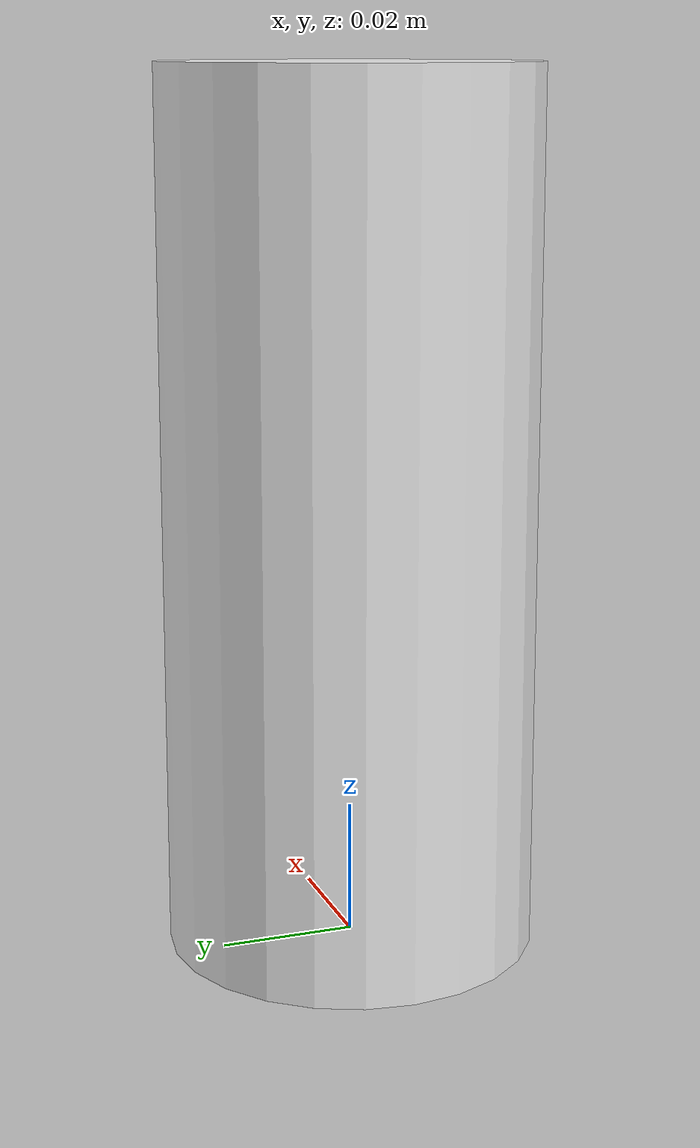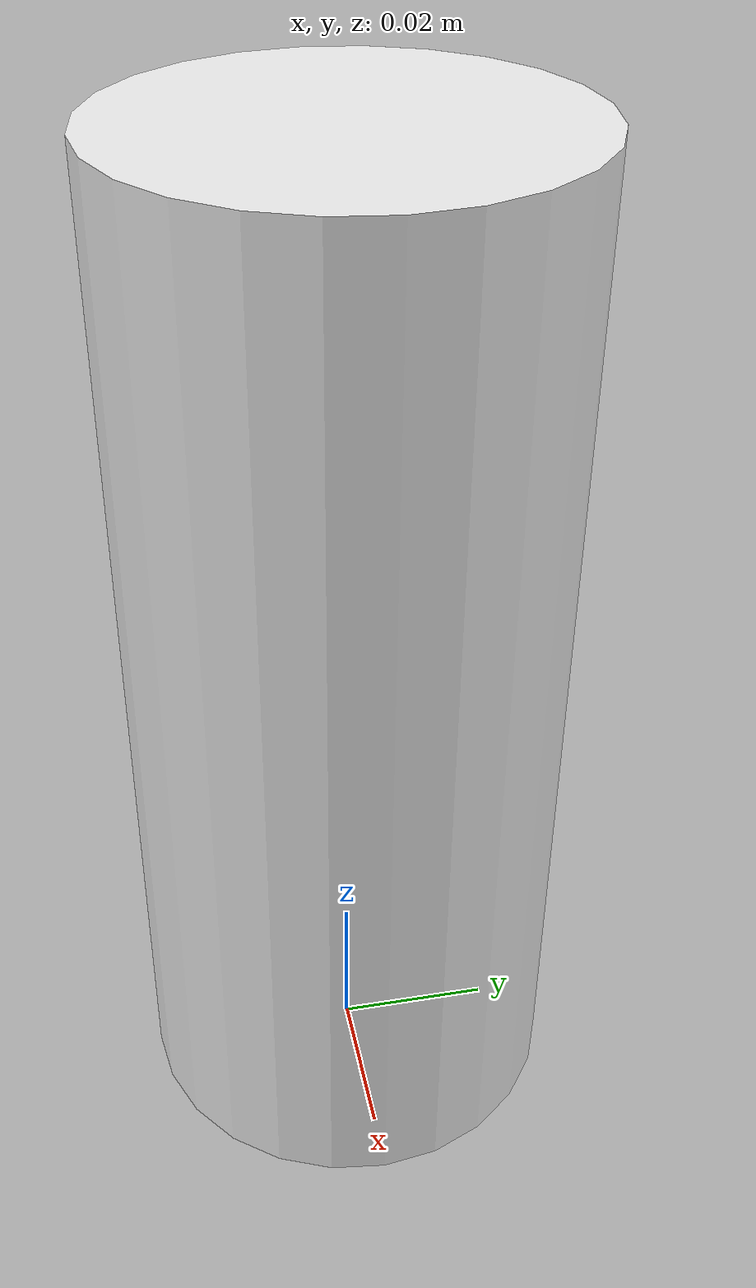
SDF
<?xml version="1.0" ?>
<sdf version="1.5">
  <model name="plastic_cup">
    <link name="link">
      <pose>0 0 0.065 0 0 0</pose>
      <inertial>
        <mass>0.0599</mass>
        <inertia>
          <ixx>0.00020796736676282054</ixx>
          <ixy>0</ixy>
          <ixz>0</ixz>
          <iyy>0.00020796736676282054</iyy>
          <iyz>0</iyz>
          <izz>5.819400192307694e-06</izz>
        </inertia>
      </inertial>

      <collision name="collision">
        <geometry>
          <cylinder>
            <radius> 0.0275 </radius>
            <length> 0.13 </length>
          </cylinder>
        </geometry>
      </collision>

      <visual name="visual">
        <geometry>
          <cylinder>
            <radius> 0.0275 </radius>
            <length> 0.13 </length>
          </cylinder>
        </geometry>
        <material>
          <script>
            <uri>file://media/materials/scripts/gazebo.material</uri>
            <name>Gazebo/White</name>
          </script>
        </material>
      </visual>

    </link>
  </model>
</sdf>
